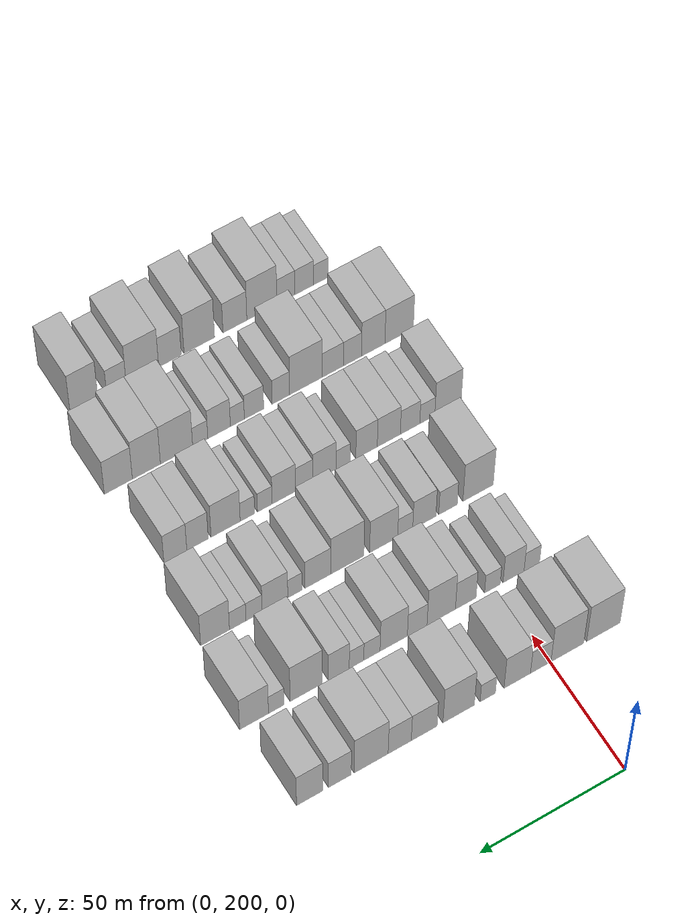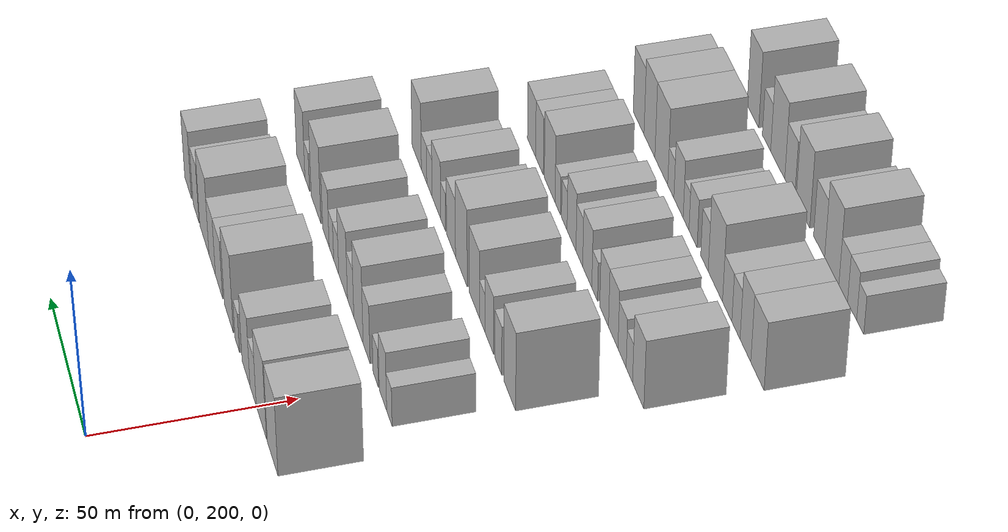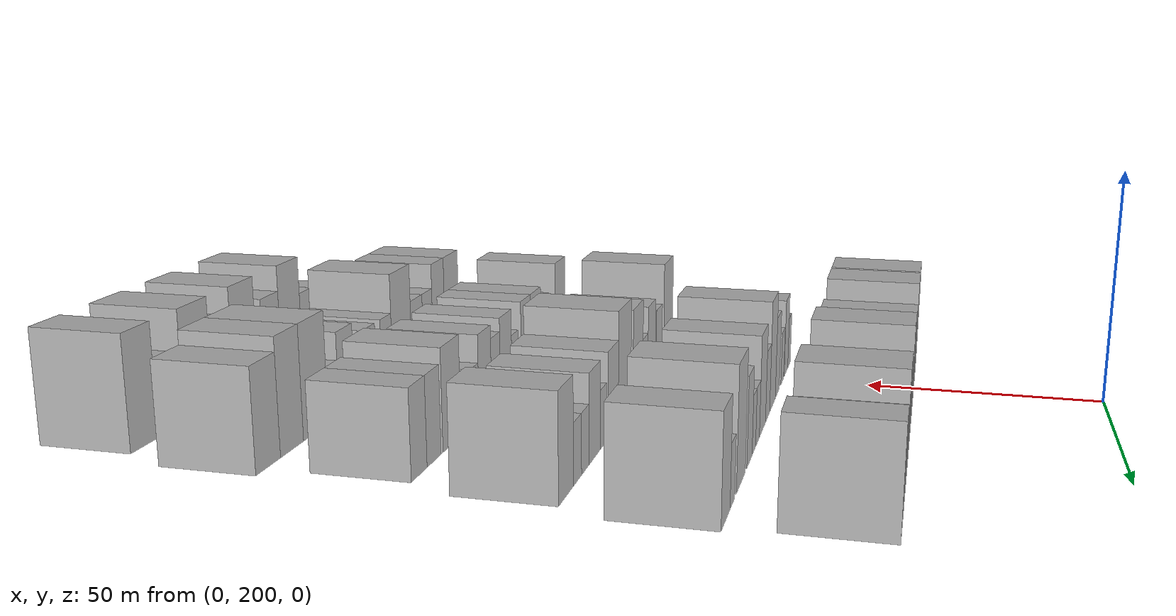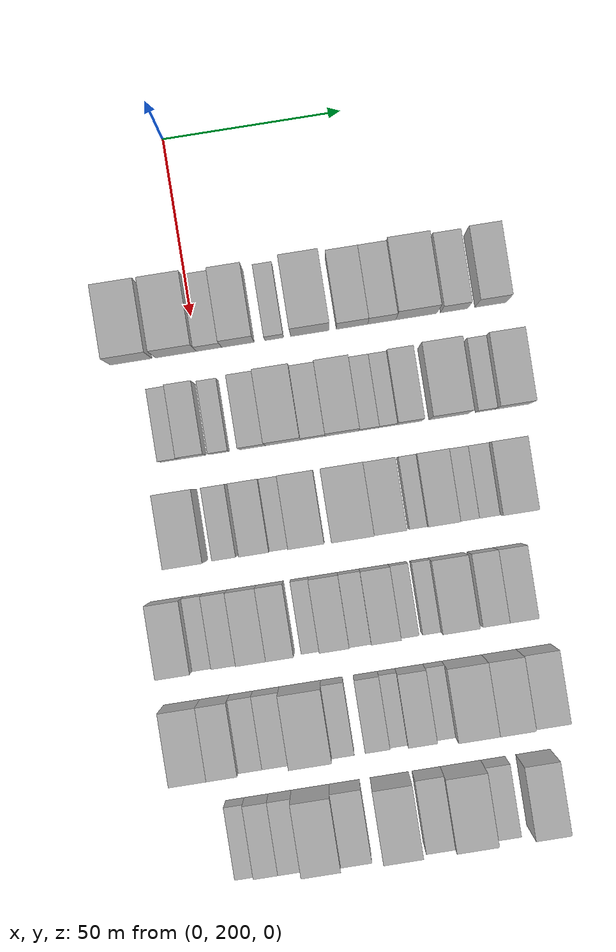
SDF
<sdf version="1.6">
 <world name="default">
  <model name="building_64">
   <static>1</static>
   <pose>50.0000 181.5985 0 0.000000 0.000000 0.000000</pose>
   <link name="link">
    <pose>0 0 12.00 0 0 0</pose>
    <collision name="collision"><geometry><box><size>20.0000 11.7319 24.0000</size></box></geometry></collision>
    <visual name="visual">
     <cast_shadows>0</cast_shadows>
     <geometry><box><size>20.0000 11.7319 24.0000</size></box></geometry>
     <material>
      <script>
       <uri>model://HANNAS_wall/materials/scripts</uri>
       <uri>model://HANNAS_wall/materials/textures</uri>
       <name>vrc/HANNAS_wall</name>
      </script>
     </material>
    </visual>
   </link>
  </model>
  <model name="building_65">
   <static>1</static>
   <pose>50.0000 194.2152 0 0.000000 0.000000 0.000000</pose>
   <link name="link">
    <pose>0 0 12.00 0 0 0</pose>
    <collision name="collision"><geometry><box><size>20.0000 11.5016 24.0000</size></box></geometry></collision>
    <visual name="visual">
     <cast_shadows>0</cast_shadows>
     <geometry><box><size>20.0000 11.5016 24.0000</size></box></geometry>
     <material>
      <script>
       <uri>model://HANNAS_wall/materials/scripts</uri>
       <uri>model://HANNAS_wall/materials/textures</uri>
       <name>vrc/HANNAS_wall</name>
      </script>
     </material>
    </visual>
   </link>
  </model>
  <model name="building_66">
   <static>1</static>
   <pose>50.0000 203.5533 0 0.000000 0.000000 0.000000</pose>
   <link name="link">
    <pose>0 0 7.50 0 0 0</pose>
    <collision name="collision"><geometry><box><size>20.0000 7.1747 15.0000</size></box></geometry></collision>
    <visual name="visual">
     <cast_shadows>0</cast_shadows>
     <geometry><box><size>20.0000 7.1747 15.0000</size></box></geometry>
     <material>
      <script>
       <uri>model://HANNAS_wall/materials/scripts</uri>
       <uri>model://HANNAS_wall/materials/textures</uri>
       <name>vrc/HANNAS_wall</name>
      </script>
     </material>
    </visual>
   </link>
  </model>
  <model name="building_67">
   <static>1</static>
   <pose>50.0000 211.7460 0 0.000000 0.000000 0.000000</pose>
   <link name="link">
    <pose>0 0 10.50 0 0 0</pose>
    <collision name="collision"><geometry><box><size>20.0000 9.2106 21.0000</size></box></geometry></collision>
    <visual name="visual">
     <cast_shadows>0</cast_shadows>
     <geometry><box><size>20.0000 9.2106 21.0000</size></box></geometry>
     <material>
      <script>
       <uri>model://HANNAS_wall/materials/scripts</uri>
       <uri>model://HANNAS_wall/materials/textures</uri>
       <name>vrc/HANNAS_wall</name>
      </script>
     </material>
    </visual>
   </link>
  </model>
  <model name="building_68">
   <static>1</static>
   <pose>50.0000 221.9985 0 0.000000 0.000000 0.000000</pose>
   <link name="link">
    <pose>0 0 6.00 0 0 0</pose>
    <collision name="collision"><geometry><box><size>20.0000 5.2945 12.0000</size></box></geometry></collision>
    <visual name="visual">
     <cast_shadows>0</cast_shadows>
     <geometry><box><size>20.0000 5.2945 12.0000</size></box></geometry>
     <material>
      <script>
       <uri>model://HANNAS_wall/materials/scripts</uri>
       <uri>model://HANNAS_wall/materials/textures</uri>
       <name>vrc/HANNAS_wall</name>
      </script>
     </material>
    </visual>
   </link>
  </model>
  <model name="building_69">
   <static>1</static>
   <pose>50.0000 232.0683 0 0.000000 0.000000 0.000000</pose>
   <link name="link">
    <pose>0 0 12.00 0 0 0</pose>
    <collision name="collision"><geometry><box><size>20.0000 10.8452 24.0000</size></box></geometry></collision>
    <visual name="visual">
     <cast_shadows>0</cast_shadows>
     <geometry><box><size>20.0000 10.8452 24.0000</size></box></geometry>
     <material>
      <script>
       <uri>model://HANNAS_wall/materials/scripts</uri>
       <uri>model://HANNAS_wall/materials/textures</uri>
       <name>vrc/HANNAS_wall</name>
      </script>
     </material>
    </visual>
   </link>
  </model>
  <model name="building_70">
   <static>1</static>
   <pose>50.0000 243.9303 0 0.000000 0.000000 0.000000</pose>
   <link name="link">
    <pose>0 0 9.00 0 0 0</pose>
    <collision name="collision"><geometry><box><size>20.0000 8.8787 18.0000</size></box></geometry></collision>
    <visual name="visual">
     <cast_shadows>0</cast_shadows>
     <geometry><box><size>20.0000 8.8787 18.0000</size></box></geometry>
     <material>
      <script>
       <uri>model://HANNAS_wall/materials/scripts</uri>
       <uri>model://HANNAS_wall/materials/textures</uri>
       <name>vrc/HANNAS_wall</name>
      </script>
     </material>
    </visual>
   </link>
  </model>
  <model name="building_71">
   <static>1</static>
   <pose>50.0000 252.3355 0 0.000000 0.000000 0.000000</pose>
   <link name="link">
    <pose>0 0 9.00 0 0 0</pose>
    <collision name="collision"><geometry><box><size>20.0000 7.9319 18.0000</size></box></geometry></collision>
    <visual name="visual">
     <cast_shadows>0</cast_shadows>
     <geometry><box><size>20.0000 7.9319 18.0000</size></box></geometry>
     <material>
      <script>
       <uri>model://HANNAS_wall/materials/scripts</uri>
       <uri>model://HANNAS_wall/materials/textures</uri>
       <name>vrc/HANNAS_wall</name>
      </script>
     </material>
    </visual>
   </link>
  </model>
  <model name="building_72">
   <static>1</static>
   <pose>50.0000 262.0985 0 0.000000 0.000000 0.000000</pose>
   <link name="link">
    <pose>0 0 12.00 0 0 0</pose>
    <collision name="collision"><geometry><box><size>20.0000 11.5940 24.0000</size></box></geometry></collision>
    <visual name="visual">
     <cast_shadows>0</cast_shadows>
     <geometry><box><size>20.0000 11.5940 24.0000</size></box></geometry>
     <material>
      <script>
       <uri>model://HANNAS_wall/materials/scripts</uri>
       <uri>model://HANNAS_wall/materials/textures</uri>
       <name>vrc/HANNAS_wall</name>
      </script>
     </material>
    </visual>
   </link>
  </model>
  <model name="building_73">
   <static>1</static>
   <pose>50.0000 272.7573 0 0.000000 0.000000 0.000000</pose>
   <link name="link">
    <pose>0 0 9.00 0 0 0</pose>
    <collision name="collision"><geometry><box><size>20.0000 7.7236 18.0000</size></box></geometry></collision>
    <visual name="visual">
     <cast_shadows>0</cast_shadows>
     <geometry><box><size>20.0000 7.7236 18.0000</size></box></geometry>
     <material>
      <script>
       <uri>model://HANNAS_wall/materials/scripts</uri>
       <uri>model://HANNAS_wall/materials/textures</uri>
       <name>vrc/HANNAS_wall</name>
      </script>
     </material>
    </visual>
   </link>
  </model>
  <model name="building_74">
   <static>1</static>
   <pose>50.0000 283.0253 0 0.000000 0.000000 0.000000</pose>
   <link name="link">
    <pose>0 0 10.50 0 0 0</pose>
    <collision name="collision"><geometry><box><size>20.0000 8.8124 21.0000</size></box></geometry></collision>
    <visual name="visual">
     <cast_shadows>0</cast_shadows>
     <geometry><box><size>20.0000 8.8124 21.0000</size></box></geometry>
     <material>
      <script>
       <uri>model://HANNAS_wall/materials/scripts</uri>
       <uri>model://HANNAS_wall/materials/textures</uri>
       <name>vrc/HANNAS_wall</name>
      </script>
     </material>
    </visual>
   </link>
  </model>
  <model name="building_173">
   <static>1</static>
   <pose>79.0000 188.0870 0 0.000000 0.000000 0.000000</pose>
   <link name="link">
    <pose>0 0 6.00 0 0 0</pose>
    <collision name="collision"><geometry><box><size>20.0000 5.4746 12.0000</size></box></geometry></collision>
    <visual name="visual">
     <cast_shadows>0</cast_shadows>
     <geometry><box><size>20.0000 5.4746 12.0000</size></box></geometry>
     <material>
      <script>
       <uri>model://HANNAS_wall/materials/scripts</uri>
       <uri>model://HANNAS_wall/materials/textures</uri>
       <name>vrc/HANNAS_wall</name>
      </script>
     </material>
    </visual>
   </link>
  </model>
  <model name="building_174">
   <static>1</static>
   <pose>79.0000 194.5356 0 0.000000 0.000000 0.000000</pose>
   <link name="link">
    <pose>0 0 9.00 0 0 0</pose>
    <collision name="collision"><geometry><box><size>20.0000 7.4225 18.0000</size></box></geometry></collision>
    <visual name="visual">
     <cast_shadows>0</cast_shadows>
     <geometry><box><size>20.0000 7.4225 18.0000</size></box></geometry>
     <material>
      <script>
       <uri>model://HANNAS_wall/materials/scripts</uri>
       <uri>model://HANNAS_wall/materials/textures</uri>
       <name>vrc/HANNAS_wall</name>
      </script>
     </material>
    </visual>
   </link>
  </model>
  <model name="building_175">
   <static>1</static>
   <pose>79.0000 201.9942 0 0.000000 0.000000 0.000000</pose>
   <link name="link">
    <pose>0 0 6.00 0 0 0</pose>
    <collision name="collision"><geometry><box><size>20.0000 5.4948 12.0000</size></box></geometry></collision>
    <visual name="visual">
     <cast_shadows>0</cast_shadows>
     <geometry><box><size>20.0000 5.4948 12.0000</size></box></geometry>
     <material>
      <script>
       <uri>model://HANNAS_wall/materials/scripts</uri>
       <uri>model://HANNAS_wall/materials/textures</uri>
       <name>vrc/HANNAS_wall</name>
      </script>
     </material>
    </visual>
   </link>
  </model>
  <model name="building_176">
   <static>1</static>
   <pose>79.0000 211.3511 0 0.000000 0.000000 0.000000</pose>
   <link name="link">
    <pose>0 0 9.00 0 0 0</pose>
    <collision name="collision"><geometry><box><size>20.0000 7.2189 18.0000</size></box></geometry></collision>
    <visual name="visual">
     <cast_shadows>0</cast_shadows>
     <geometry><box><size>20.0000 7.2189 18.0000</size></box></geometry>
     <material>
      <script>
       <uri>model://HANNAS_wall/materials/scripts</uri>
       <uri>model://HANNAS_wall/materials/textures</uri>
       <name>vrc/HANNAS_wall</name>
      </script>
     </material>
    </visual>
   </link>
  </model>
  <model name="building_177">
   <static>1</static>
   <pose>79.0000 219.9083 0 0.000000 0.000000 0.000000</pose>
   <link name="link">
    <pose>0 0 12.00 0 0 0</pose>
    <collision name="collision"><geometry><box><size>20.0000 9.8955 24.0000</size></box></geometry></collision>
    <visual name="visual">
     <cast_shadows>0</cast_shadows>
     <geometry><box><size>20.0000 9.8955 24.0000</size></box></geometry>
     <material>
      <script>
       <uri>model://HANNAS_wall/materials/scripts</uri>
       <uri>model://HANNAS_wall/materials/textures</uri>
       <name>vrc/HANNAS_wall</name>
      </script>
     </material>
    </visual>
   </link>
  </model>
  <model name="building_178">
   <static>1</static>
   <pose>79.0000 228.2720 0 0.000000 0.000000 0.000000</pose>
   <link name="link">
    <pose>0 0 7.50 0 0 0</pose>
    <collision name="collision"><geometry><box><size>20.0000 6.8319 15.0000</size></box></geometry></collision>
    <visual name="visual">
     <cast_shadows>0</cast_shadows>
     <geometry><box><size>20.0000 6.8319 15.0000</size></box></geometry>
     <material>
      <script>
       <uri>model://HANNAS_wall/materials/scripts</uri>
       <uri>model://HANNAS_wall/materials/textures</uri>
       <name>vrc/HANNAS_wall</name>
      </script>
     </material>
    </visual>
   </link>
  </model>
  <model name="building_179">
   <static>1</static>
   <pose>79.0000 236.4286 0 0.000000 0.000000 0.000000</pose>
   <link name="link">
    <pose>0 0 10.50 0 0 0</pose>
    <collision name="collision"><geometry><box><size>20.0000 9.4815 21.0000</size></box></geometry></collision>
    <visual name="visual">
     <cast_shadows>0</cast_shadows>
     <geometry><box><size>20.0000 9.4815 21.0000</size></box></geometry>
     <material>
      <script>
       <uri>model://HANNAS_wall/materials/scripts</uri>
       <uri>model://HANNAS_wall/materials/textures</uri>
       <name>vrc/HANNAS_wall</name>
      </script>
     </material>
    </visual>
   </link>
  </model>
  <model name="building_180">
   <static>1</static>
   <pose>79.0000 243.9800 0 0.000000 0.000000 0.000000</pose>
   <link name="link">
    <pose>0 0 6.00 0 0 0</pose>
    <collision name="collision"><geometry><box><size>20.0000 5.6213 12.0000</size></box></geometry></collision>
    <visual name="visual">
     <cast_shadows>0</cast_shadows>
     <geometry><box><size>20.0000 5.6213 12.0000</size></box></geometry>
     <material>
      <script>
       <uri>model://HANNAS_wall/materials/scripts</uri>
       <uri>model://HANNAS_wall/materials/textures</uri>
       <name>vrc/HANNAS_wall</name>
      </script>
     </material>
    </visual>
   </link>
  </model>
  <model name="building_181">
   <static>1</static>
   <pose>79.0000 249.3070 0 0.000000 0.000000 0.000000</pose>
   <link name="link">
    <pose>0 0 6.00 0 0 0</pose>
    <collision name="collision"><geometry><box><size>20.0000 5.0328 12.0000</size></box></geometry></collision>
    <visual name="visual">
     <cast_shadows>0</cast_shadows>
     <geometry><box><size>20.0000 5.0328 12.0000</size></box></geometry>
     <material>
      <script>
       <uri>model://HANNAS_wall/materials/scripts</uri>
       <uri>model://HANNAS_wall/materials/textures</uri>
       <name>vrc/HANNAS_wall</name>
      </script>
     </material>
    </visual>
   </link>
  </model>
  <model name="building_182">
   <static>1</static>
   <pose>79.0000 255.4251 0 0.000000 0.000000 0.000000</pose>
   <link name="link">
    <pose>0 0 9.00 0 0 0</pose>
    <collision name="collision"><geometry><box><size>20.0000 7.2034 18.0000</size></box></geometry></collision>
    <visual name="visual">
     <cast_shadows>0</cast_shadows>
     <geometry><box><size>20.0000 7.2034 18.0000</size></box></geometry>
     <material>
      <script>
       <uri>model://HANNAS_wall/materials/scripts</uri>
       <uri>model://HANNAS_wall/materials/textures</uri>
       <name>vrc/HANNAS_wall</name>
      </script>
     </material>
    </visual>
   </link>
  </model>
  <model name="building_183">
   <static>1</static>
   <pose>79.0000 266.5724 0 0.000000 0.000000 0.000000</pose>
   <link name="link">
    <pose>0 0 12.00 0 0 0</pose>
    <collision name="collision"><geometry><box><size>20.0000 11.0912 24.0000</size></box></geometry></collision>
    <visual name="visual">
     <cast_shadows>0</cast_shadows>
     <geometry><box><size>20.0000 11.0912 24.0000</size></box></geometry>
     <material>
      <script>
       <uri>model://HANNAS_wall/materials/scripts</uri>
       <uri>model://HANNAS_wall/materials/textures</uri>
       <name>vrc/HANNAS_wall</name>
      </script>
     </material>
    </visual>
   </link>
  </model>
  <model name="building_184">
   <static>1</static>
   <pose>79.0000 276.7990 0 0.000000 0.000000 0.000000</pose>
   <link name="link">
    <pose>0 0 6.00 0 0 0</pose>
    <collision name="collision"><geometry><box><size>20.0000 5.3619 12.0000</size></box></geometry></collision>
    <visual name="visual">
     <cast_shadows>0</cast_shadows>
     <geometry><box><size>20.0000 5.3619 12.0000</size></box></geometry>
     <material>
      <script>
       <uri>model://HANNAS_wall/materials/scripts</uri>
       <uri>model://HANNAS_wall/materials/textures</uri>
       <name>vrc/HANNAS_wall</name>
      </script>
     </material>
    </visual>
   </link>
  </model>
  <model name="building_185">
   <static>1</static>
   <pose>79.0000 284.3834 0 0.000000 0.000000 0.000000</pose>
   <link name="link">
    <pose>0 0 10.50 0 0 0</pose>
    <collision name="collision"><geometry><box><size>20.0000 9.8071 21.0000</size></box></geometry></collision>
    <visual name="visual">
     <cast_shadows>0</cast_shadows>
     <geometry><box><size>20.0000 9.8071 21.0000</size></box></geometry>
     <material>
      <script>
       <uri>model://HANNAS_wall/materials/scripts</uri>
       <uri>model://HANNAS_wall/materials/textures</uri>
       <name>vrc/HANNAS_wall</name>
      </script>
     </material>
    </visual>
   </link>
  </model>
  <model name="building_287">
   <static>1</static>
   <pose>108.0000 188.6860 0 0.000000 0.000000 0.000000</pose>
   <link name="link">
    <pose>0 0 12.00 0 0 0</pose>
    <collision name="collision"><geometry><box><size>20.0000 10.7622 24.0000</size></box></geometry></collision>
    <visual name="visual">
     <cast_shadows>0</cast_shadows>
     <geometry><box><size>20.0000 10.7622 24.0000</size></box></geometry>
     <material>
      <script>
       <uri>model://HANNAS_wall/materials/scripts</uri>
       <uri>model://HANNAS_wall/materials/textures</uri>
       <name>vrc/HANNAS_wall</name>
      </script>
     </material>
    </visual>
   </link>
  </model>
  <model name="building_288">
   <static>1</static>
   <pose>108.0000 199.3387 0 0.000000 0.000000 0.000000</pose>
   <link name="link">
    <pose>0 0 7.50 0 0 0</pose>
    <collision name="collision"><geometry><box><size>20.0000 6.5432 15.0000</size></box></geometry></collision>
    <visual name="visual">
     <cast_shadows>0</cast_shadows>
     <geometry><box><size>20.0000 6.5432 15.0000</size></box></geometry>
     <material>
      <script>
       <uri>model://HANNAS_wall/materials/scripts</uri>
       <uri>model://HANNAS_wall/materials/textures</uri>
       <name>vrc/HANNAS_wall</name>
      </script>
     </material>
    </visual>
   </link>
  </model>
  <model name="building_289">
   <static>1</static>
   <pose>108.0000 207.7035 0 0.000000 0.000000 0.000000</pose>
   <link name="link">
    <pose>0 0 9.00 0 0 0</pose>
    <collision name="collision"><geometry><box><size>20.0000 8.1863 18.0000</size></box></geometry></collision>
    <visual name="visual">
     <cast_shadows>0</cast_shadows>
     <geometry><box><size>20.0000 8.1863 18.0000</size></box></geometry>
     <material>
      <script>
       <uri>model://HANNAS_wall/materials/scripts</uri>
       <uri>model://HANNAS_wall/materials/textures</uri>
       <name>vrc/HANNAS_wall</name>
      </script>
     </material>
    </visual>
   </link>
  </model>
  <model name="building_290">
   <static>1</static>
   <pose>108.0000 214.4435 0 0.000000 0.000000 0.000000</pose>
   <link name="link">
    <pose>0 0 6.00 0 0 0</pose>
    <collision name="collision"><geometry><box><size>20.0000 5.2936 12.0000</size></box></geometry></collision>
    <visual name="visual">
     <cast_shadows>0</cast_shadows>
     <geometry><box><size>20.0000 5.2936 12.0000</size></box></geometry>
     <material>
      <script>
       <uri>model://HANNAS_wall/materials/scripts</uri>
       <uri>model://HANNAS_wall/materials/textures</uri>
       <name>vrc/HANNAS_wall</name>
      </script>
     </material>
    </visual>
   </link>
  </model>
  <model name="building_291">
   <static>1</static>
   <pose>108.0000 222.0087 0 0.000000 0.000000 0.000000</pose>
   <link name="link">
    <pose>0 0 10.50 0 0 0</pose>
    <collision name="collision"><geometry><box><size>20.0000 9.8370 21.0000</size></box></geometry></collision>
    <visual name="visual">
     <cast_shadows>0</cast_shadows>
     <geometry><box><size>20.0000 9.8370 21.0000</size></box></geometry>
     <material>
      <script>
       <uri>model://HANNAS_wall/materials/scripts</uri>
       <uri>model://HANNAS_wall/materials/textures</uri>
       <name>vrc/HANNAS_wall</name>
      </script>
     </material>
    </visual>
   </link>
  </model>
  <model name="building_292">
   <static>1</static>
   <pose>108.0000 234.7211 0 0.000000 0.000000 0.000000</pose>
   <link name="link">
    <pose>0 0 12.00 0 0 0</pose>
    <collision name="collision"><geometry><box><size>20.0000 11.5878 24.0000</size></box></geometry></collision>
    <visual name="visual">
     <cast_shadows>0</cast_shadows>
     <geometry><box><size>20.0000 11.5878 24.0000</size></box></geometry>
     <material>
      <script>
       <uri>model://HANNAS_wall/materials/scripts</uri>
       <uri>model://HANNAS_wall/materials/textures</uri>
       <name>vrc/HANNAS_wall</name>
      </script>
     </material>
    </visual>
   </link>
  </model>
  <model name="building_293">
   <static>1</static>
   <pose>108.0000 245.0122 0 0.000000 0.000000 0.000000</pose>
   <link name="link">
    <pose>0 0 9.00 0 0 0</pose>
    <collision name="collision"><geometry><box><size>20.0000 8.9943 18.0000</size></box></geometry></collision>
    <visual name="visual">
     <cast_shadows>0</cast_shadows>
     <geometry><box><size>20.0000 8.9943 18.0000</size></box></geometry>
     <material>
      <script>
       <uri>model://HANNAS_wall/materials/scripts</uri>
       <uri>model://HANNAS_wall/materials/textures</uri>
       <name>vrc/HANNAS_wall</name>
      </script>
     </material>
    </visual>
   </link>
  </model>
  <model name="building_294">
   <static>1</static>
   <pose>108.0000 252.9585 0 0.000000 0.000000 0.000000</pose>
   <link name="link">
    <pose>0 0 6.00 0 0 0</pose>
    <collision name="collision"><geometry><box><size>20.0000 4.8985 12.0000</size></box></geometry></collision>
    <visual name="visual">
     <cast_shadows>0</cast_shadows>
     <geometry><box><size>20.0000 4.8985 12.0000</size></box></geometry>
     <material>
      <script>
       <uri>model://HANNAS_wall/materials/scripts</uri>
       <uri>model://HANNAS_wall/materials/textures</uri>
       <name>vrc/HANNAS_wall</name>
      </script>
     </material>
    </visual>
   </link>
  </model>
  <model name="building_295">
   <static>1</static>
   <pose>108.0000 259.8365 0 0.000000 0.000000 0.000000</pose>
   <link name="link">
    <pose>0 0 9.00 0 0 0</pose>
    <collision name="collision"><geometry><box><size>20.0000 8.8575 18.0000</size></box></geometry></collision>
    <visual name="visual">
     <cast_shadows>0</cast_shadows>
     <geometry><box><size>20.0000 8.8575 18.0000</size></box></geometry>
     <material>
      <script>
       <uri>model://HANNAS_wall/materials/scripts</uri>
       <uri>model://HANNAS_wall/materials/textures</uri>
       <name>vrc/HANNAS_wall</name>
      </script>
     </material>
    </visual>
   </link>
  </model>
  <model name="building_296">
   <static>1</static>
   <pose>108.0000 267.0480 0 0.000000 0.000000 0.000000</pose>
   <link name="link">
    <pose>0 0 6.00 0 0 0</pose>
    <collision name="collision"><geometry><box><size>20.0000 5.5655 12.0000</size></box></geometry></collision>
    <visual name="visual">
     <cast_shadows>0</cast_shadows>
     <geometry><box><size>20.0000 5.5655 12.0000</size></box></geometry>
     <material>
      <script>
       <uri>model://HANNAS_wall/materials/scripts</uri>
       <uri>model://HANNAS_wall/materials/textures</uri>
       <name>vrc/HANNAS_wall</name>
      </script>
     </material>
    </visual>
   </link>
  </model>
  <model name="building_297">
   <static>1</static>
   <pose>108.0000 272.6795 0 0.000000 0.000000 0.000000</pose>
   <link name="link">
    <pose>0 0 6.00 0 0 0</pose>
    <collision name="collision"><geometry><box><size>20.0000 5.6973 12.0000</size></box></geometry></collision>
    <visual name="visual">
     <cast_shadows>0</cast_shadows>
     <geometry><box><size>20.0000 5.6973 12.0000</size></box></geometry>
     <material>
      <script>
       <uri>model://HANNAS_wall/materials/scripts</uri>
       <uri>model://HANNAS_wall/materials/textures</uri>
       <name>vrc/HANNAS_wall</name>
      </script>
     </material>
    </visual>
   </link>
  </model>
  <model name="building_298">
   <static>1</static>
   <pose>108.0000 280.4710 0 0.000000 0.000000 0.000000</pose>
   <link name="link">
    <pose>0 0 10.50 0 0 0</pose>
    <collision name="collision"><geometry><box><size>20.0000 9.8856 21.0000</size></box></geometry></collision>
    <visual name="visual">
     <cast_shadows>0</cast_shadows>
     <geometry><box><size>20.0000 9.8856 21.0000</size></box></geometry>
     <material>
      <script>
       <uri>model://HANNAS_wall/materials/scripts</uri>
       <uri>model://HANNAS_wall/materials/textures</uri>
       <name>vrc/HANNAS_wall</name>
      </script>
     </material>
    </visual>
   </link>
  </model>
  <model name="building_397">
   <static>1</static>
   <pose>137.0000 181.1523 0 0.000000 0.000000 0.000000</pose>
   <link name="link">
    <pose>0 0 10.50 0 0 0</pose>
    <collision name="collision"><geometry><box><size>20.0000 9.4325 21.0000</size></box></geometry></collision>
    <visual name="visual">
     <cast_shadows>0</cast_shadows>
     <geometry><box><size>20.0000 9.4325 21.0000</size></box></geometry>
     <material>
      <script>
       <uri>model://HANNAS_wall/materials/scripts</uri>
       <uri>model://HANNAS_wall/materials/textures</uri>
       <name>vrc/HANNAS_wall</name>
      </script>
     </material>
    </visual>
   </link>
  </model>
  <model name="building_398">
   <static>1</static>
   <pose>137.0000 188.5606 0 0.000000 0.000000 0.000000</pose>
   <link name="link">
    <pose>0 0 6.00 0 0 0</pose>
    <collision name="collision"><geometry><box><size>20.0000 5.3841 12.0000</size></box></geometry></collision>
    <visual name="visual">
     <cast_shadows>0</cast_shadows>
     <geometry><box><size>20.0000 5.3841 12.0000</size></box></geometry>
     <material>
      <script>
       <uri>model://HANNAS_wall/materials/scripts</uri>
       <uri>model://HANNAS_wall/materials/textures</uri>
       <name>vrc/HANNAS_wall</name>
      </script>
     </material>
    </visual>
   </link>
  </model>
  <model name="building_399">
   <static>1</static>
   <pose>137.0000 194.7111 0 0.000000 0.000000 0.000000</pose>
   <link name="link">
    <pose>0 0 7.50 0 0 0</pose>
    <collision name="collision"><geometry><box><size>20.0000 6.9170 15.0000</size></box></geometry></collision>
    <visual name="visual">
     <cast_shadows>0</cast_shadows>
     <geometry><box><size>20.0000 6.9170 15.0000</size></box></geometry>
     <material>
      <script>
       <uri>model://HANNAS_wall/materials/scripts</uri>
       <uri>model://HANNAS_wall/materials/textures</uri>
       <name>vrc/HANNAS_wall</name>
      </script>
     </material>
    </visual>
   </link>
  </model>
  <model name="building_400">
   <static>1</static>
   <pose>137.0000 202.2724 0 0.000000 0.000000 0.000000</pose>
   <link name="link">
    <pose>0 0 9.00 0 0 0</pose>
    <collision name="collision"><geometry><box><size>20.0000 8.2055 18.0000</size></box></geometry></collision>
    <visual name="visual">
     <cast_shadows>0</cast_shadows>
     <geometry><box><size>20.0000 8.2055 18.0000</size></box></geometry>
     <material>
      <script>
       <uri>model://HANNAS_wall/materials/scripts</uri>
       <uri>model://HANNAS_wall/materials/textures</uri>
       <name>vrc/HANNAS_wall</name>
      </script>
     </material>
    </visual>
   </link>
  </model>
  <model name="building_401">
   <static>1</static>
   <pose>137.0000 210.1750 0 0.000000 0.000000 0.000000</pose>
   <link name="link">
    <pose>0 0 9.00 0 0 0</pose>
    <collision name="collision"><geometry><box><size>20.0000 7.5997 18.0000</size></box></geometry></collision>
    <visual name="visual">
     <cast_shadows>0</cast_shadows>
     <geometry><box><size>20.0000 7.5997 18.0000</size></box></geometry>
     <material>
      <script>
       <uri>model://HANNAS_wall/materials/scripts</uri>
       <uri>model://HANNAS_wall/materials/textures</uri>
       <name>vrc/HANNAS_wall</name>
      </script>
     </material>
    </visual>
   </link>
  </model>
  <model name="building_402">
   <static>1</static>
   <pose>137.0000 218.4883 0 0.000000 0.000000 0.000000</pose>
   <link name="link">
    <pose>0 0 6.00 0 0 0</pose>
    <collision name="collision"><geometry><box><size>20.0000 5.0269 12.0000</size></box></geometry></collision>
    <visual name="visual">
     <cast_shadows>0</cast_shadows>
     <geometry><box><size>20.0000 5.0269 12.0000</size></box></geometry>
     <material>
      <script>
       <uri>model://HANNAS_wall/materials/scripts</uri>
       <uri>model://HANNAS_wall/materials/textures</uri>
       <name>vrc/HANNAS_wall</name>
      </script>
     </material>
    </visual>
   </link>
  </model>
  <model name="building_403">
   <static>1</static>
   <pose>137.0000 225.0958 0 0.000000 0.000000 0.000000</pose>
   <link name="link">
    <pose>0 0 9.00 0 0 0</pose>
    <collision name="collision"><geometry><box><size>20.0000 8.1881 18.0000</size></box></geometry></collision>
    <visual name="visual">
     <cast_shadows>0</cast_shadows>
     <geometry><box><size>20.0000 8.1881 18.0000</size></box></geometry>
     <material>
      <script>
       <uri>model://HANNAS_wall/materials/scripts</uri>
       <uri>model://HANNAS_wall/materials/textures</uri>
       <name>vrc/HANNAS_wall</name>
      </script>
     </material>
    </visual>
   </link>
  </model>
  <model name="building_404">
   <static>1</static>
   <pose>137.0000 232.2193 0 0.000000 0.000000 0.000000</pose>
   <link name="link">
    <pose>0 0 7.50 0 0 0</pose>
    <collision name="collision"><geometry><box><size>20.0000 6.0589 15.0000</size></box></geometry></collision>
    <visual name="visual">
     <cast_shadows>0</cast_shadows>
     <geometry><box><size>20.0000 6.0589 15.0000</size></box></geometry>
     <material>
      <script>
       <uri>model://HANNAS_wall/materials/scripts</uri>
       <uri>model://HANNAS_wall/materials/textures</uri>
       <name>vrc/HANNAS_wall</name>
      </script>
     </material>
    </visual>
   </link>
  </model>
  <model name="building_405">
   <static>1</static>
   <pose>137.0000 239.3447 0 0.000000 0.000000 0.000000</pose>
   <link name="link">
    <pose>0 0 9.00 0 0 0</pose>
    <collision name="collision"><geometry><box><size>20.0000 8.1918 18.0000</size></box></geometry></collision>
    <visual name="visual">
     <cast_shadows>0</cast_shadows>
     <geometry><box><size>20.0000 8.1918 18.0000</size></box></geometry>
     <material>
      <script>
       <uri>model://HANNAS_wall/materials/scripts</uri>
       <uri>model://HANNAS_wall/materials/textures</uri>
       <name>vrc/HANNAS_wall</name>
      </script>
     </material>
    </visual>
   </link>
  </model>
  <model name="building_406">
   <static>1</static>
   <pose>137.0000 245.9923 0 0.000000 0.000000 0.000000</pose>
   <link name="link">
    <pose>0 0 6.00 0 0 0</pose>
    <collision name="collision"><geometry><box><size>20.0000 5.1035 12.0000</size></box></geometry></collision>
    <visual name="visual">
     <cast_shadows>0</cast_shadows>
     <geometry><box><size>20.0000 5.1035 12.0000</size></box></geometry>
     <material>
      <script>
       <uri>model://HANNAS_wall/materials/scripts</uri>
       <uri>model://HANNAS_wall/materials/textures</uri>
       <name>vrc/HANNAS_wall</name>
      </script>
     </material>
    </visual>
   </link>
  </model>
  <model name="building_407">
   <static>1</static>
   <pose>137.0000 252.0689 0 0.000000 0.000000 0.000000</pose>
   <link name="link">
    <pose>0 0 6.00 0 0 0</pose>
    <collision name="collision"><geometry><box><size>20.0000 5.0497 12.0000</size></box></geometry></collision>
    <visual name="visual">
     <cast_shadows>0</cast_shadows>
     <geometry><box><size>20.0000 5.0497 12.0000</size></box></geometry>
     <material>
      <script>
       <uri>model://HANNAS_wall/materials/scripts</uri>
       <uri>model://HANNAS_wall/materials/textures</uri>
       <name>vrc/HANNAS_wall</name>
      </script>
     </material>
    </visual>
   </link>
  </model>
  <model name="building_408">
   <static>1</static>
   <pose>137.0000 259.6502 0 0.000000 0.000000 0.000000</pose>
   <link name="link">
    <pose>0 0 10.50 0 0 0</pose>
    <collision name="collision"><geometry><box><size>20.0000 10.1128 21.0000</size></box></geometry></collision>
    <visual name="visual">
     <cast_shadows>0</cast_shadows>
     <geometry><box><size>20.0000 10.1128 21.0000</size></box></geometry>
     <material>
      <script>
       <uri>model://HANNAS_wall/materials/scripts</uri>
       <uri>model://HANNAS_wall/materials/textures</uri>
       <name>vrc/HANNAS_wall</name>
      </script>
     </material>
    </visual>
   </link>
  </model>
  <model name="building_409">
   <static>1</static>
   <pose>137.0000 269.4123 0 0.000000 0.000000 0.000000</pose>
   <link name="link">
    <pose>0 0 9.00 0 0 0</pose>
    <collision name="collision"><geometry><box><size>20.0000 7.4114 18.0000</size></box></geometry></collision>
    <visual name="visual">
     <cast_shadows>0</cast_shadows>
     <geometry><box><size>20.0000 7.4114 18.0000</size></box></geometry>
     <material>
      <script>
       <uri>model://HANNAS_wall/materials/scripts</uri>
       <uri>model://HANNAS_wall/materials/textures</uri>
       <name>vrc/HANNAS_wall</name>
      </script>
     </material>
    </visual>
   </link>
  </model>
  <model name="building_410">
   <static>1</static>
   <pose>137.0000 277.0651 0 0.000000 0.000000 0.000000</pose>
   <link name="link">
    <pose>0 0 9.00 0 0 0</pose>
    <collision name="collision"><geometry><box><size>20.0000 7.8941 18.0000</size></box></geometry></collision>
    <visual name="visual">
     <cast_shadows>0</cast_shadows>
     <geometry><box><size>20.0000 7.8941 18.0000</size></box></geometry>
     <material>
      <script>
       <uri>model://HANNAS_wall/materials/scripts</uri>
       <uri>model://HANNAS_wall/materials/textures</uri>
       <name>vrc/HANNAS_wall</name>
      </script>
     </material>
    </visual>
   </link>
  </model>
  <model name="building_514">
   <static>1</static>
   <pose>166.0000 180.6257 0 0.000000 0.000000 0.000000</pose>
   <link name="link">
    <pose>0 0 10.50 0 0 0</pose>
    <collision name="collision"><geometry><box><size>20.0000 10.2473 21.0000</size></box></geometry></collision>
    <visual name="visual">
     <cast_shadows>0</cast_shadows>
     <geometry><box><size>20.0000 10.2473 21.0000</size></box></geometry>
     <material>
      <script>
       <uri>model://HANNAS_wall/materials/scripts</uri>
       <uri>model://HANNAS_wall/materials/textures</uri>
       <name>vrc/HANNAS_wall</name>
      </script>
     </material>
    </visual>
   </link>
  </model>
  <model name="building_515">
   <static>1</static>
   <pose>166.0000 189.9546 0 0.000000 0.000000 0.000000</pose>
   <link name="link">
    <pose>0 0 10.50 0 0 0</pose>
    <collision name="collision"><geometry><box><size>20.0000 8.4107 21.0000</size></box></geometry></collision>
    <visual name="visual">
     <cast_shadows>0</cast_shadows>
     <geometry><box><size>20.0000 8.4107 21.0000</size></box></geometry>
     <material>
      <script>
       <uri>model://HANNAS_wall/materials/scripts</uri>
       <uri>model://HANNAS_wall/materials/textures</uri>
       <name>vrc/HANNAS_wall</name>
      </script>
     </material>
    </visual>
   </link>
  </model>
  <model name="building_516">
   <static>1</static>
   <pose>166.0000 197.4110 0 0.000000 0.000000 0.000000</pose>
   <link name="link">
    <pose>0 0 7.50 0 0 0</pose>
    <collision name="collision"><geometry><box><size>20.0000 6.5021 15.0000</size></box></geometry></collision>
    <visual name="visual">
     <cast_shadows>0</cast_shadows>
     <geometry><box><size>20.0000 6.5021 15.0000</size></box></geometry>
     <material>
      <script>
       <uri>model://HANNAS_wall/materials/scripts</uri>
       <uri>model://HANNAS_wall/materials/textures</uri>
       <name>vrc/HANNAS_wall</name>
      </script>
     </material>
    </visual>
   </link>
  </model>
  <model name="building_517">
   <static>1</static>
   <pose>166.0000 204.3971 0 0.000000 0.000000 0.000000</pose>
   <link name="link">
    <pose>0 0 7.50 0 0 0</pose>
    <collision name="collision"><geometry><box><size>20.0000 7.4700 15.0000</size></box></geometry></collision>
    <visual name="visual">
     <cast_shadows>0</cast_shadows>
     <geometry><box><size>20.0000 7.4700 15.0000</size></box></geometry>
     <material>
      <script>
       <uri>model://HANNAS_wall/materials/scripts</uri>
       <uri>model://HANNAS_wall/materials/textures</uri>
       <name>vrc/HANNAS_wall</name>
      </script>
     </material>
    </visual>
   </link>
  </model>
  <model name="building_518">
   <static>1</static>
   <pose>166.0000 213.9800 0 0.000000 0.000000 0.000000</pose>
   <link name="link">
    <pose>0 0 12.00 0 0 0</pose>
    <collision name="collision"><geometry><box><size>20.0000 11.6958 24.0000</size></box></geometry></collision>
    <visual name="visual">
     <cast_shadows>0</cast_shadows>
     <geometry><box><size>20.0000 11.6958 24.0000</size></box></geometry>
     <material>
      <script>
       <uri>model://HANNAS_wall/materials/scripts</uri>
       <uri>model://HANNAS_wall/materials/textures</uri>
       <name>vrc/HANNAS_wall</name>
      </script>
     </material>
    </visual>
   </link>
  </model>
  <model name="building_519">
   <static>1</static>
   <pose>166.0000 222.9199 0 0.000000 0.000000 0.000000</pose>
   <link name="link">
    <pose>0 0 7.50 0 0 0</pose>
    <collision name="collision"><geometry><box><size>20.0000 6.1839 15.0000</size></box></geometry></collision>
    <visual name="visual">
     <cast_shadows>0</cast_shadows>
     <geometry><box><size>20.0000 6.1839 15.0000</size></box></geometry>
     <material>
      <script>
       <uri>model://HANNAS_wall/materials/scripts</uri>
       <uri>model://HANNAS_wall/materials/textures</uri>
       <name>vrc/HANNAS_wall</name>
      </script>
     </material>
    </visual>
   </link>
  </model>
  <model name="building_520">
   <static>1</static>
   <pose>166.0000 232.4279 0 0.000000 0.000000 0.000000</pose>
   <link name="link">
    <pose>0 0 7.50 0 0 0</pose>
    <collision name="collision"><geometry><box><size>20.0000 6.8321 15.0000</size></box></geometry></collision>
    <visual name="visual">
     <cast_shadows>0</cast_shadows>
     <geometry><box><size>20.0000 6.8321 15.0000</size></box></geometry>
     <material>
      <script>
       <uri>model://HANNAS_wall/materials/scripts</uri>
       <uri>model://HANNAS_wall/materials/textures</uri>
       <name>vrc/HANNAS_wall</name>
      </script>
     </material>
    </visual>
   </link>
  </model>
  <model name="building_521">
   <static>1</static>
   <pose>166.0000 238.3113 0 0.000000 0.000000 0.000000</pose>
   <link name="link">
    <pose>0 0 6.00 0 0 0</pose>
    <collision name="collision"><geometry><box><size>20.0000 4.9346 12.0000</size></box></geometry></collision>
    <visual name="visual">
     <cast_shadows>0</cast_shadows>
     <geometry><box><size>20.0000 4.9346 12.0000</size></box></geometry>
     <material>
      <script>
       <uri>model://HANNAS_wall/materials/scripts</uri>
       <uri>model://HANNAS_wall/materials/textures</uri>
       <name>vrc/HANNAS_wall</name>
      </script>
     </material>
    </visual>
   </link>
  </model>
  <model name="building_522">
   <static>1</static>
   <pose>166.0000 244.7494 0 0.000000 0.000000 0.000000</pose>
   <link name="link">
    <pose>0 0 9.00 0 0 0</pose>
    <collision name="collision"><geometry><box><size>20.0000 7.9416 18.0000</size></box></geometry></collision>
    <visual name="visual">
     <cast_shadows>0</cast_shadows>
     <geometry><box><size>20.0000 7.9416 18.0000</size></box></geometry>
     <material>
      <script>
       <uri>model://HANNAS_wall/materials/scripts</uri>
       <uri>model://HANNAS_wall/materials/textures</uri>
       <name>vrc/HANNAS_wall</name>
      </script>
     </material>
    </visual>
   </link>
  </model>
  <model name="building_523">
   <static>1</static>
   <pose>166.0000 251.3791 0 0.000000 0.000000 0.000000</pose>
   <link name="link">
    <pose>0 0 6.00 0 0 0</pose>
    <collision name="collision"><geometry><box><size>20.0000 5.3179 12.0000</size></box></geometry></collision>
    <visual name="visual">
     <cast_shadows>0</cast_shadows>
     <geometry><box><size>20.0000 5.3179 12.0000</size></box></geometry>
     <material>
      <script>
       <uri>model://HANNAS_wall/materials/scripts</uri>
       <uri>model://HANNAS_wall/materials/textures</uri>
       <name>vrc/HANNAS_wall</name>
      </script>
     </material>
    </visual>
   </link>
  </model>
  <model name="building_524">
   <static>1</static>
   <pose>166.0000 259.6711 0 0.000000 0.000000 0.000000</pose>
   <link name="link">
    <pose>0 0 12.00 0 0 0</pose>
    <collision name="collision"><geometry><box><size>20.0000 11.2661 24.0000</size></box></geometry></collision>
    <visual name="visual">
     <cast_shadows>0</cast_shadows>
     <geometry><box><size>20.0000 11.2661 24.0000</size></box></geometry>
     <material>
      <script>
       <uri>model://HANNAS_wall/materials/scripts</uri>
       <uri>model://HANNAS_wall/materials/textures</uri>
       <name>vrc/HANNAS_wall</name>
      </script>
     </material>
    </visual>
   </link>
  </model>
  <model name="building_525">
   <static>1</static>
   <pose>166.0000 270.1821 0 0.000000 0.000000 0.000000</pose>
   <link name="link">
    <pose>0 0 12.00 0 0 0</pose>
    <collision name="collision"><geometry><box><size>20.0000 9.7558 24.0000</size></box></geometry></collision>
    <visual name="visual">
     <cast_shadows>0</cast_shadows>
     <geometry><box><size>20.0000 9.7558 24.0000</size></box></geometry>
     <material>
      <script>
       <uri>model://HANNAS_wall/materials/scripts</uri>
       <uri>model://HANNAS_wall/materials/textures</uri>
       <name>vrc/HANNAS_wall</name>
      </script>
     </material>
    </visual>
   </link>
  </model>
  <model name="building_526">
   <static>1</static>
   <pose>166.0000 279.9421 0 0.000000 0.000000 0.000000</pose>
   <link name="link">
    <pose>0 0 10.50 0 0 0</pose>
    <collision name="collision"><geometry><box><size>20.0000 9.7643 21.0000</size></box></geometry></collision>
    <visual name="visual">
     <cast_shadows>0</cast_shadows>
     <geometry><box><size>20.0000 9.7643 21.0000</size></box></geometry>
     <material>
      <script>
       <uri>model://HANNAS_wall/materials/scripts</uri>
       <uri>model://HANNAS_wall/materials/textures</uri>
       <name>vrc/HANNAS_wall</name>
      </script>
     </material>
    </visual>
   </link>
  </model>
  <model name="building_623">
   <static>1</static>
   <pose>195.0000 191.0438 0 0.000000 0.000000 0.000000</pose>
   <link name="link">
    <pose>0 0 6.00 0 0 0</pose>
    <collision name="collision"><geometry><box><size>20.0000 5.2365 12.0000</size></box></geometry></collision>
    <visual name="visual">
     <cast_shadows>0</cast_shadows>
     <geometry><box><size>20.0000 5.2365 12.0000</size></box></geometry>
     <material>
      <script>
       <uri>model://HANNAS_wall/materials/scripts</uri>
       <uri>model://HANNAS_wall/materials/textures</uri>
       <name>vrc/HANNAS_wall</name>
      </script>
     </material>
    </visual>
   </link>
  </model>
  <model name="building_624">
   <static>1</static>
   <pose>195.0000 197.0402 0 0.000000 0.000000 0.000000</pose>
   <link name="link">
    <pose>0 0 7.50 0 0 0</pose>
    <collision name="collision"><geometry><box><size>20.0000 6.7562 15.0000</size></box></geometry></collision>
    <visual name="visual">
     <cast_shadows>0</cast_shadows>
     <geometry><box><size>20.0000 6.7562 15.0000</size></box></geometry>
     <material>
      <script>
       <uri>model://HANNAS_wall/materials/scripts</uri>
       <uri>model://HANNAS_wall/materials/textures</uri>
       <name>vrc/HANNAS_wall</name>
      </script>
     </material>
    </visual>
   </link>
  </model>
  <model name="building_625">
   <static>1</static>
   <pose>195.0000 203.6688 0 0.000000 0.000000 0.000000</pose>
   <link name="link">
    <pose>0 0 7.50 0 0 0</pose>
    <collision name="collision"><geometry><box><size>20.0000 6.5011 15.0000</size></box></geometry></collision>
    <visual name="visual">
     <cast_shadows>0</cast_shadows>
     <geometry><box><size>20.0000 6.5011 15.0000</size></box></geometry>
     <material>
      <script>
       <uri>model://HANNAS_wall/materials/scripts</uri>
       <uri>model://HANNAS_wall/materials/textures</uri>
       <name>vrc/HANNAS_wall</name>
      </script>
     </material>
    </visual>
   </link>
  </model>
  <model name="building_626">
   <static>1</static>
   <pose>195.0000 212.2993 0 0.000000 0.000000 0.000000</pose>
   <link name="link">
    <pose>0 0 12.00 0 0 0</pose>
    <collision name="collision"><geometry><box><size>20.0000 10.7598 24.0000</size></box></geometry></collision>
    <visual name="visual">
     <cast_shadows>0</cast_shadows>
     <geometry><box><size>20.0000 10.7598 24.0000</size></box></geometry>
     <material>
      <script>
       <uri>model://HANNAS_wall/materials/scripts</uri>
       <uri>model://HANNAS_wall/materials/textures</uri>
       <name>vrc/HANNAS_wall</name>
      </script>
     </material>
    </visual>
   </link>
  </model>
  <model name="building_627">
   <static>1</static>
   <pose>195.0000 221.9449 0 0.000000 0.000000 0.000000</pose>
   <link name="link">
    <pose>0 0 9.00 0 0 0</pose>
    <collision name="collision"><geometry><box><size>20.0000 8.5314 18.0000</size></box></geometry></collision>
    <visual name="visual">
     <cast_shadows>0</cast_shadows>
     <geometry><box><size>20.0000 8.5314 18.0000</size></box></geometry>
     <material>
      <script>
       <uri>model://HANNAS_wall/materials/scripts</uri>
       <uri>model://HANNAS_wall/materials/textures</uri>
       <name>vrc/HANNAS_wall</name>
      </script>
     </material>
    </visual>
   </link>
  </model>
  <model name="building_628">
   <static>1</static>
   <pose>195.0000 234.6290 0 0.000000 0.000000 0.000000</pose>
   <link name="link">
    <pose>0 0 12.00 0 0 0</pose>
    <collision name="collision"><geometry><box><size>20.0000 10.8367 24.0000</size></box></geometry></collision>
    <visual name="visual">
     <cast_shadows>0</cast_shadows>
     <geometry><box><size>20.0000 10.8367 24.0000</size></box></geometry>
     <material>
      <script>
       <uri>model://HANNAS_wall/materials/scripts</uri>
       <uri>model://HANNAS_wall/materials/textures</uri>
       <name>vrc/HANNAS_wall</name>
      </script>
     </material>
    </visual>
   </link>
  </model>
  <model name="building_629">
   <static>1</static>
   <pose>195.0000 245.0347 0 0.000000 0.000000 0.000000</pose>
   <link name="link">
    <pose>0 0 9.00 0 0 0</pose>
    <collision name="collision"><geometry><box><size>20.0000 7.9746 18.0000</size></box></geometry></collision>
    <visual name="visual">
     <cast_shadows>0</cast_shadows>
     <geometry><box><size>20.0000 7.9746 18.0000</size></box></geometry>
     <material>
      <script>
       <uri>model://HANNAS_wall/materials/scripts</uri>
       <uri>model://HANNAS_wall/materials/textures</uri>
       <name>vrc/HANNAS_wall</name>
      </script>
     </material>
    </visual>
   </link>
  </model>
  <model name="building_630">
   <static>1</static>
   <pose>195.0000 254.7483 0 0.000000 0.000000 0.000000</pose>
   <link name="link">
    <pose>0 0 12.00 0 0 0</pose>
    <collision name="collision"><geometry><box><size>20.0000 11.4525 24.0000</size></box></geometry></collision>
    <visual name="visual">
     <cast_shadows>0</cast_shadows>
     <geometry><box><size>20.0000 11.4525 24.0000</size></box></geometry>
     <material>
      <script>
       <uri>model://HANNAS_wall/materials/scripts</uri>
       <uri>model://HANNAS_wall/materials/textures</uri>
       <name>vrc/HANNAS_wall</name>
      </script>
     </material>
    </visual>
   </link>
  </model>
  <model name="building_631">
   <static>1</static>
   <pose>195.0000 263.9044 0 0.000000 0.000000 0.000000</pose>
   <link name="link">
    <pose>0 0 7.50 0 0 0</pose>
    <collision name="collision"><geometry><box><size>20.0000 6.8597 15.0000</size></box></geometry></collision>
    <visual name="visual">
     <cast_shadows>0</cast_shadows>
     <geometry><box><size>20.0000 6.8597 15.0000</size></box></geometry>
     <material>
      <script>
       <uri>model://HANNAS_wall/materials/scripts</uri>
       <uri>model://HANNAS_wall/materials/textures</uri>
       <name>vrc/HANNAS_wall</name>
      </script>
     </material>
    </visual>
   </link>
  </model>
  <model name="building_632">
   <static>1</static>
   <pose>195.0000 275.2050 0 0.000000 0.000000 0.000000</pose>
   <link name="link">
    <pose>0 0 12.00 0 0 0</pose>
    <collision name="collision"><geometry><box><size>20.0000 9.7415 24.0000</size></box></geometry></collision>
    <visual name="visual">
     <cast_shadows>0</cast_shadows>
     <geometry><box><size>20.0000 9.7415 24.0000</size></box></geometry>
     <material>
      <script>
       <uri>model://HANNAS_wall/materials/scripts</uri>
       <uri>model://HANNAS_wall/materials/textures</uri>
       <name>vrc/HANNAS_wall</name>
      </script>
     </material>
    </visual>
   </link>
  </model>
 </world>
</sdf>
